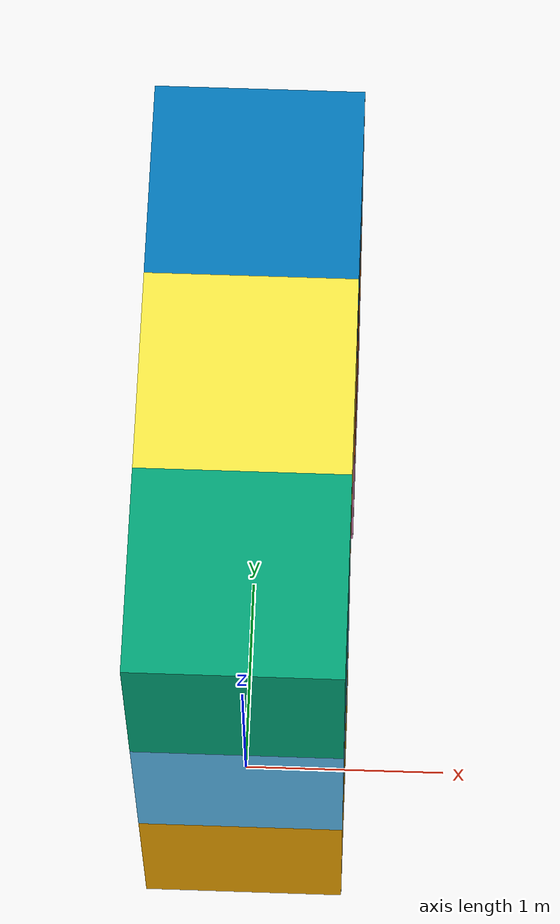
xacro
<?xml version="1.0"?>
<robot name="testing1" xmlns:xacro="http://ros.org/wiki/xacro">
    <xacro:property name="box_size" value="1.0"/>
    <xacro:property name="box_mass" value="1.0"/>
    <xacro:property name="box_inertia" value="${box_mass * (box_size*box_size + box_size*box_size) / 12.0}"/>

    <xacro:macro name="box_link" params="name">
        <link name="${name}">
            <visual>
                <geometry>
                    <box size="${box_size} ${box_size} ${box_size}"/>
                </geometry>
                <origin xyz="0 0 0" rpy="0 0 0"/>
            </visual>
            <collision>
                <origin xyz="0 0 0" rpy="0 0 0"/>
                <geometry>
                    <box size="${box_size} ${box_size} ${box_size}"/>
                </geometry>
            </collision>
            <inertial>
              <origin xyz="0 0 0" rpy="0 0 0"/>
              <mass value="${box_mass}"/>
              <inertia
                ixx="${box_inertia}" ixy="0.0" ixz="0.0"
                iyy="${box_inertia}" iyz="0.0"
                izz="${box_inertia}"/>
            </inertial>
        </link>
    </xacro:macro>

    <xacro:macro name="fixed_joint" params="parent child xyz">
        <joint name="${parent}_${child}" type="fixed">
            <parent link="${parent}"/>
            <child link="${child}"/>
            <origin rpy="0 0 0" xyz="${xyz}"/>
        </joint>
    </xacro:macro>

    <xacro:box_link name="0"/>
    <xacro:box_link name="1"/>
    <xacro:box_link name="2"/>
    <xacro:box_link name="3"/>
    <xacro:box_link name="4"/>
    <xacro:box_link name="5"/>
    <xacro:box_link name="6"/>

    <xacro:fixed_joint parent="0" child="1" xyz="0 0 1"/>
    <xacro:fixed_joint parent="1" child="2" xyz="0 0 1"/>
    <xacro:fixed_joint parent="2" child="3" xyz="0 1 0"/>
    <xacro:fixed_joint parent="3" child="4" xyz="0 1 0"/>
    <xacro:fixed_joint parent="4" child="5" xyz="0 0 -1"/>
    <xacro:fixed_joint parent="5" child="6" xyz="0 0 -1"/>
</robot>
